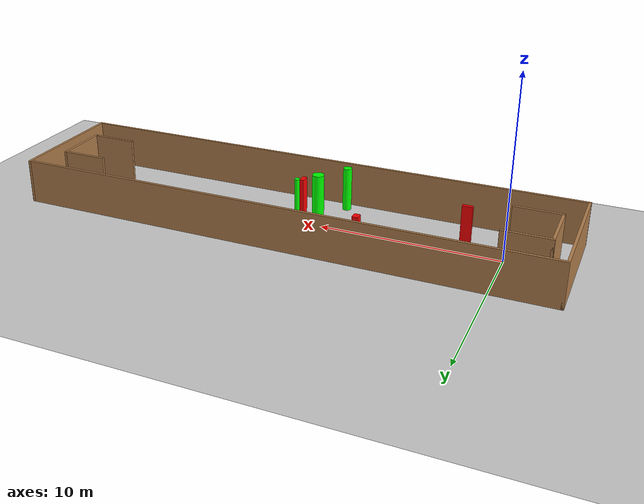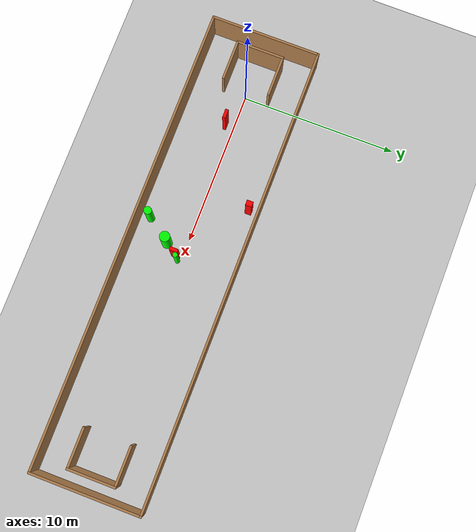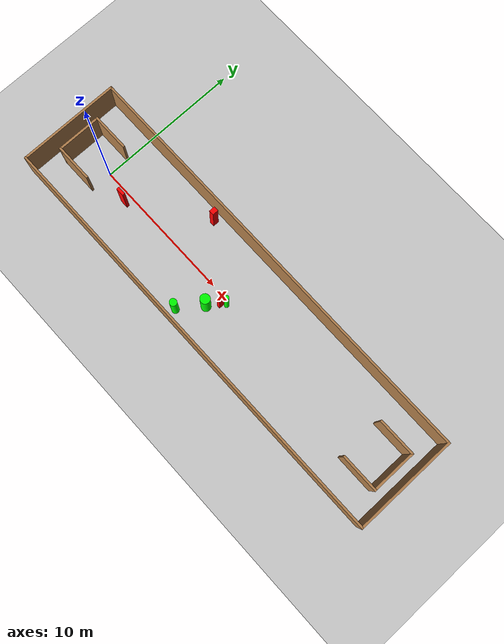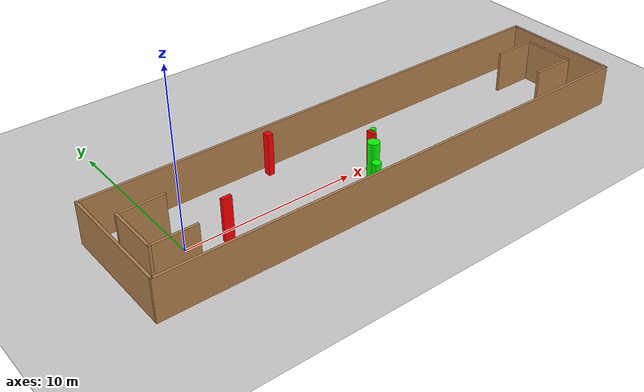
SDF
<sdf version="1.7">
 <world name="default">
  <light name="sun" type="directional">
   <pose>0 0 10 0 -0 0</pose>
   <diffuse>0.8 0.8 0.8 1</diffuse>
   <specular>0.2 0.2 0.2 1</specular>
   <attenuation>
    <range>1000</range>
    <constant>0.9</constant>
    <linear>0.01</linear>
    <quadratic>0.001</quadratic>
   </attenuation>
   <direction>-0.5 0.1 -0.9</direction>
   <spot><inner_angle>0</inner_angle><outer_angle>0</outer_angle><falloff>0</falloff></spot>
  </light>
  <model name="ground_plane">
   <static>1</static>
   <link name="link">
    <collision name="collision">
     <geometry><plane><normal>0 0 1</normal><size>100 100</size></plane></geometry>
     <surface>
      <contact><collide_bitmask>65535</collide_bitmask></contact>
      <friction><ode><mu>100</mu><mu2>50</mu2></ode></friction>
     </surface>
    </collision>
    <visual name="visual">
     <cast_shadows>0</cast_shadows>
     <geometry><plane><normal>0 0 1</normal><size>100 100</size></plane></geometry>
     <material>
      <script><uri>file://media/materials/scripts/gazebo.material</uri><name>Gazebo/Grey</name></script>
     </material>
    </visual>
   </link>
  </model>
  <gravity>0 0 -9.8</gravity>
  <magnetic_field>6e-06 2.3e-05 -4.2e-05</magnetic_field>
  <atmosphere type="adiabatic"/>
  <physics type="ode">
   <max_step_size>0.001</max_step_size>
   <real_time_factor>1</real_time_factor>
   <real_time_update_rate>1000</real_time_update_rate>
  </physics>
  <scene><ambient>0.4 0.4 0.4 1</ambient><background>0.7 0.7 0.7 1</background><shadows>1</shadows></scene>
  <spherical_coordinates>
   <surface_model>EARTH_WGS84</surface_model>
   <latitude_deg>0</latitude_deg>
   <longitude_deg>0</longitude_deg>
   <elevation>0</elevation>
   <heading_deg>0</heading_deg>
  </spherical_coordinates>
  <model name="my_base_walls">
   <link name="Wall_0">
    <collision name="Wall_0_Collision">
     <geometry><box><size>7.15 0.15 2.5</size></box></geometry>
     <pose>0 0 1.25 0 -0 0</pose>
    </collision>
    <visual name="Wall_0_Visual">
     <pose>0 0 1.25 0 -0 0</pose>
     <geometry><box><size>7.15 0.15 2.5</size></box></geometry>
     <material>
      <script><uri>file://media/materials/scripts/gazebo.material</uri><name>Gazebo/Wood</name></script>
      <ambient>1 1 1 1</ambient>
     </material>
     <meta><layer>0</layer></meta>
    </visual>
    <pose>-15 0 0 0 -0 1.5708</pose>
   </link>
   <link name="Wall_10">
    <collision name="Wall_10_Collision">
     <geometry><box><size>2.65 0.15 2.5</size></box></geometry>
     <pose>0 0 1.25 0 -0 0</pose>
    </collision>
    <visual name="Wall_10_Visual">
     <pose>0 0 1.25 0 -0 0</pose>
     <geometry><box><size>2.65 0.15 2.5</size></box></geometry>
     <material>
      <script><uri>file://media/materials/scripts/gazebo.material</uri><name>Gazebo/Wood</name></script>
      <ambient>1 1 1 1</ambient>
     </material>
     <meta><layer>0</layer></meta>
    </visual>
    <pose>-12.75 -1.5 0 0 -0 0</pose>
   </link>
   <link name="Wall_12">
    <collision name="Wall_12_Collision">
     <geometry><box><size>2.65 0.15 2.5</size></box></geometry>
     <pose>0 0 1.25 0 -0 0</pose>
    </collision>
    <visual name="Wall_12_Visual">
     <pose>0 0 1.25 0 -0 0</pose>
     <geometry><box><size>2.65 0.15 2.5</size></box></geometry>
     <material>
      <script><uri>file://media/materials/scripts/gazebo.material</uri><name>Gazebo/Wood</name></script>
      <ambient>1 1 1 1</ambient>
     </material>
     <meta><layer>0</layer></meta>
    </visual>
    <pose>-12.75 1.5 0 0 -0 0</pose>
   </link>
   <link name="Wall_14">
    <collision name="Wall_14_Collision">
     <geometry><box><size>3.15 0.15 2.5</size></box></geometry>
     <pose>0 0 1.25 0 -0 0</pose>
    </collision>
    <visual name="Wall_14_Visual">
     <pose>0 0 1.25 0 -0 0</pose>
     <geometry><box><size>3.15 0.15 2.5</size></box></geometry>
     <material>
      <script><uri>file://media/materials/scripts/gazebo.material</uri><name>Gazebo/Wood</name></script>
      <ambient>1 1 1 1</ambient>
     </material>
     <meta><layer>0</layer></meta>
    </visual>
    <pose>14 0 0 0 -0 -1.5708</pose>
   </link>
   <link name="Wall_15">
    <collision name="Wall_15_Collision">
     <geometry><box><size>2.65 0.15 2.5</size></box></geometry>
     <pose>0 0 1.25 0 -0 0</pose>
    </collision>
    <visual name="Wall_15_Visual">
     <pose>0 0 1.25 0 -0 0</pose>
     <geometry><box><size>2.65 0.15 2.5</size></box></geometry>
     <material>
      <script><uri>file://media/materials/scripts/gazebo.material</uri><name>Gazebo/Wood</name></script>
      <ambient>1 1 1 1</ambient>
     </material>
     <meta><layer>0</layer></meta>
    </visual>
    <pose>12.75 -1.5 0 0 -0 3.14159</pose>
   </link>
   <link name="Wall_17">
    <collision name="Wall_17_Collision">
     <geometry><box><size>2.65 0.15 2.5</size></box></geometry>
     <pose>0 0 1.25 0 -0 0</pose>
    </collision>
    <visual name="Wall_17_Visual">
     <pose>0 0 1.25 0 -0 0</pose>
     <geometry><box><size>2.65 0.15 2.5</size></box></geometry>
     <material>
      <script><uri>file://media/materials/scripts/gazebo.material</uri><name>Gazebo/Wood</name></script>
      <ambient>1 1 1 1</ambient>
     </material>
     <meta><layer>0</layer></meta>
    </visual>
    <pose>12.75 1.5 0 0 -0 3.14159</pose>
   </link>
   <link name="Wall_2">
    <collision name="Wall_2_Collision">
     <geometry><box><size>30.15 0.15 2.5</size></box></geometry>
     <pose>0 0 1.25 0 -0 0</pose>
    </collision>
    <visual name="Wall_2_Visual">
     <pose>0 0 1.25 0 -0 0</pose>
     <geometry><box><size>30.15 0.15 2.5</size></box></geometry>
     <material>
      <script><uri>file://media/materials/scripts/gazebo.material</uri><name>Gazebo/Wood</name></script>
      <ambient>1 1 1 1</ambient>
     </material>
     <meta><layer>0</layer></meta>
    </visual>
    <pose>-0 -3.5 0 0 -0 0</pose>
   </link>
   <link name="Wall_4">
    <collision name="Wall_4_Collision">
     <geometry><box><size>30.15 0.15 2.5</size></box></geometry>
     <pose>0 0 1.25 0 -0 0</pose>
    </collision>
    <visual name="Wall_4_Visual">
     <pose>0 0 1.25 0 -0 0</pose>
     <geometry><box><size>30.15 0.15 2.5</size></box></geometry>
     <material>
      <script><uri>file://media/materials/scripts/gazebo.material</uri><name>Gazebo/Wood</name></script>
      <ambient>1 1 1 1</ambient>
     </material>
     <meta><layer>0</layer></meta>
    </visual>
    <pose>-0 3.5 0 0 -0 0</pose>
   </link>
   <link name="Wall_6">
    <collision name="Wall_6_Collision">
     <geometry><box><size>7.15 0.15 2.5</size></box></geometry>
     <pose>0 0 1.25 0 -0 0</pose>
    </collision>
    <visual name="Wall_6_Visual">
     <pose>0 0 1.25 0 -0 0</pose>
     <geometry><box><size>7.15 0.15 2.5</size></box></geometry>
     <material>
      <script><uri>file://media/materials/scripts/gazebo.material</uri><name>Gazebo/Wood</name></script>
      <ambient>1 1 1 1</ambient>
     </material>
     <meta><layer>0</layer></meta>
    </visual>
    <pose>15 0 0 0 -0 -1.5708</pose>
   </link>
   <link name="Wall_9">
    <collision name="Wall_9_Collision">
     <geometry><box><size>3.15 0.15 2.5</size></box></geometry>
     <pose>0 0 1.25 0 -0 0</pose>
    </collision>
    <visual name="Wall_9_Visual">
     <pose>0 0 1.25 0 -0 0</pose>
     <geometry><box><size>3.15 0.15 2.5</size></box></geometry>
     <material>
      <script><uri>file://media/materials/scripts/gazebo.material</uri><name>Gazebo/Wood</name></script>
      <ambient>1 1 1 1</ambient>
     </material>
     <meta><layer>0</layer></meta>
    </visual>
    <pose>-14 0 0 0 -0 -1.5708</pose>
   </link>
   <static>1</static>
   <pose>11.5 0 0 0 -0 0</pose>
  </model>
  <model name="cylinder1">
   <static>1</static>
   <link name="link">
    <inertial>
     <mass>1</mass>
     <inertia><ixx>0.5</ixx><ixy>0</ixy><ixz>0</ixz><iyy>0.5</iyy><iyz>0</iyz><izz>1</izz></inertia>
    </inertial>
    <collision name="collision">
     <geometry><cylinder><radius>0.15523038275636564</radius><length>2.5</length></cylinder></geometry>
    </collision>
    <visual name="visual">
     <geometry><cylinder><radius>0.15523038275636564</radius><length>2.5</length></cylinder></geometry>
     <material>
      <ambient>0 1 0 1</ambient>
      <diffuse>0 1 0 1</diffuse>
      <specular>0.1 0.1 0.1 1</specular>
      <emissive>0 0 0 0</emissive>
     </material>
    </visual>
   </link>
   <pose>11.496655724415344 -0.23365793606964935 1.25 0 0 0</pose>
  </model>
  <model name="cylinder2">
   <static>1</static>
   <link name="link">
    <inertial>
     <mass>1</mass>
     <inertia><ixx>0.5</ixx><ixy>0</ixy><ixz>0</ixz><iyy>0.5</iyy><iyz>0</iyz><izz>1</izz></inertia>
    </inertial>
    <collision name="collision">
     <geometry><cylinder><radius>0.331791442609032</radius><length>2.5</length></cylinder></geometry>
    </collision>
    <visual name="visual">
     <geometry><cylinder><radius>0.331791442609032</radius><length>2.5</length></cylinder></geometry>
     <material>
      <ambient>0 1 0 1</ambient>
      <diffuse>0 1 0 1</diffuse>
      <specular>0.1 0.1 0.1 1</specular>
      <emissive>0 0 0 0</emissive>
     </material>
    </visual>
   </link>
   <pose>10.677781983188884 -1.2370625538550417 1.25 0 0 0</pose>
  </model>
  <model name="cylinder3">
   <static>1</static>
   <link name="link">
    <inertial>
     <mass>1</mass>
     <inertia><ixx>0.5</ixx><ixy>0</ixy><ixz>0</ixz><iyy>0.5</iyy><iyz>0</iyz><izz>1</izz></inertia>
    </inertial>
    <collision name="collision">
     <geometry><cylinder><radius>0.24604001946307202</radius><length>2.5</length></cylinder></geometry>
    </collision>
    <visual name="visual">
     <geometry><cylinder><radius>0.24604001946307202</radius><length>2.5</length></cylinder></geometry>
     <material>
      <ambient>0 1 0 1</ambient>
      <diffuse>0 1 0 1</diffuse>
      <specular>0.1 0.1 0.1 1</specular>
      <emissive>0 0 0 0</emissive>
     </material>
    </visual>
   </link>
   <pose>9.541505233393826 -2.792748346794253 1.25 0 0 0</pose>
  </model>
  <model name="box1">
   <static>1</static>
   <link name="link">
    <inertial>
     <mass>1</mass>
     <inertia><ixx>0.083</ixx><ixy>0</ixy><ixz>0</ixz><iyy>0.083</iyy><iyz>0</iyz><izz>0.083</izz></inertia>
    </inertial>
    <collision name="collision">
     <geometry><box><size>0.33953814549990285 0.4117956052149223 2.5</size></box></geometry>
    </collision>
    <visual name="visual">
     <geometry><box><size>0.33953814549990285 0.4117956052149223 2.5</size></box></geometry>
     <material>
      <ambient>1 0 0 1</ambient>
      <diffuse>1 0 0 1</diffuse>
      <specular>0.1 0.1 0.1 1</specular>
      <emissive>0 0 0 0</emissive>
     </material>
    </visual>
    <sensor name="my_contact" type="contact">
     <contact><collision>box_collision</collision><topic>__default_topic__</topic></contact>
    </sensor>
   </link>
   <pose>6.942701204285303 2.8401955290123295 1.25 0 0 0</pose>
  </model>
  <model name="box2">
   <static>1</static>
   <link name="link">
    <inertial>
     <mass>1</mass>
     <inertia><ixx>0.083</ixx><ixy>0</ixy><ixz>0</ixz><iyy>0.083</iyy><iyz>0</iyz><izz>0.083</izz></inertia>
    </inertial>
    <collision name="collision">
     <geometry><box><size>0.5654395349095164 0.20077556100571683 2.5</size></box></geometry>
    </collision>
    <visual name="visual">
     <geometry><box><size>0.5654395349095164 0.20077556100571683 2.5</size></box></geometry>
     <material>
      <ambient>1 0 0 1</ambient>
      <diffuse>1 0 0 1</diffuse>
      <specular>0.1 0.1 0.1 1</specular>
      <emissive>0 0 0 0</emissive>
     </material>
    </visual>
    <sensor name="my_contact" type="contact">
     <contact><collision>box_collision</collision><topic>__default_topic__</topic></contact>
    </sensor>
   </link>
   <pose>2.143702121207971 -0.5519284404797147 1.25 0 0 0</pose>
  </model>
  <model name="box3">
   <static>1</static>
   <link name="link">
    <inertial>
     <mass>1</mass>
     <inertia><ixx>0.083</ixx><ixy>0</ixy><ixz>0</ixz><iyy>0.083</iyy><iyz>0</iyz><izz>0.083</izz></inertia>
    </inertial>
    <collision name="collision">
     <geometry><box><size>0.22139733418187282 0.5135086413181791 2.5</size></box></geometry>
    </collision>
    <visual name="visual">
     <geometry><box><size>0.22139733418187282 0.5135086413181791 2.5</size></box></geometry>
     <material>
      <ambient>1 0 0 1</ambient>
      <diffuse>1 0 0 1</diffuse>
      <specular>0.1 0.1 0.1 1</specular>
      <emissive>0 0 0 0</emissive>
     </material>
    </visual>
    <sensor name="my_contact" type="contact">
     <contact><collision>box_collision</collision><topic>__default_topic__</topic></contact>
    </sensor>
   </link>
   <pose>11.229533844981203 -0.4292017595388078 1.25 0 0 0</pose>
  </model>
 </world>
</sdf>
